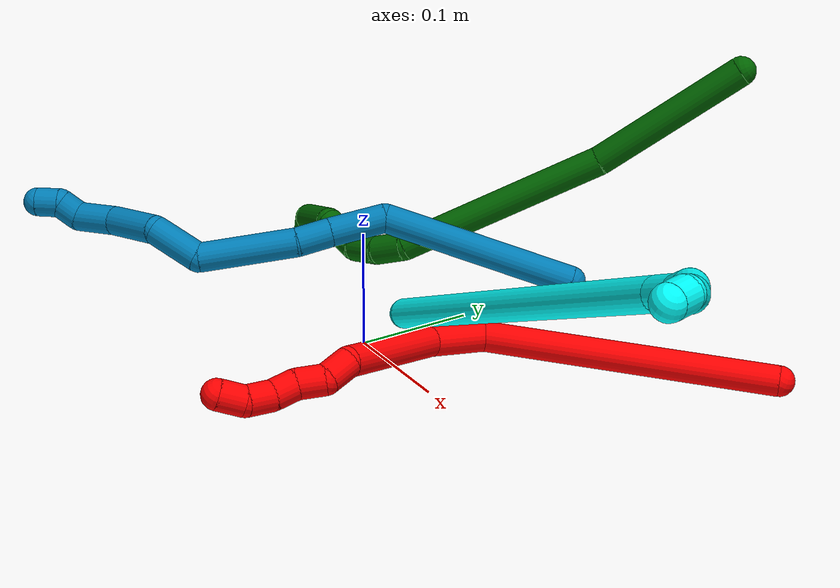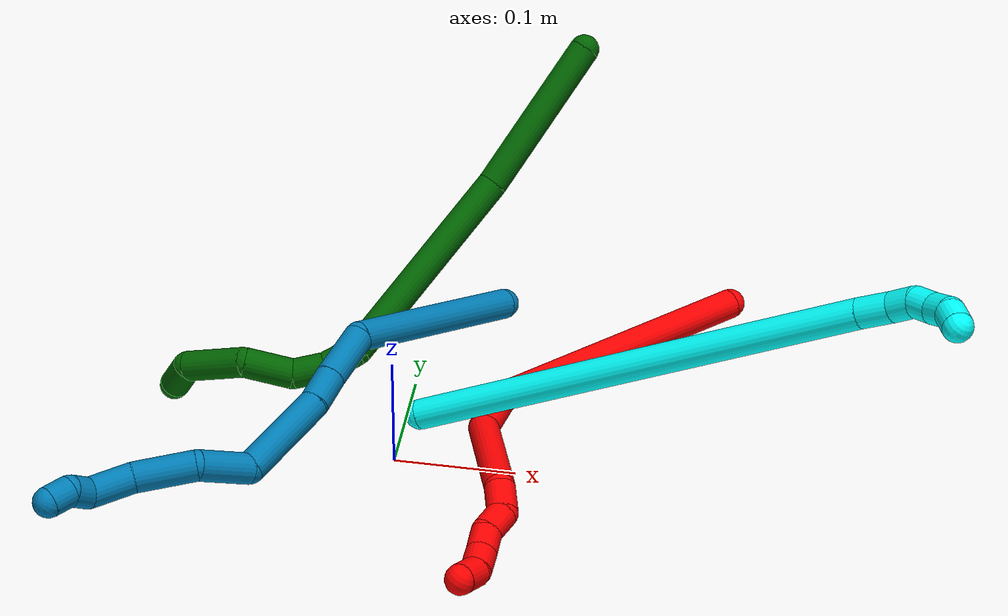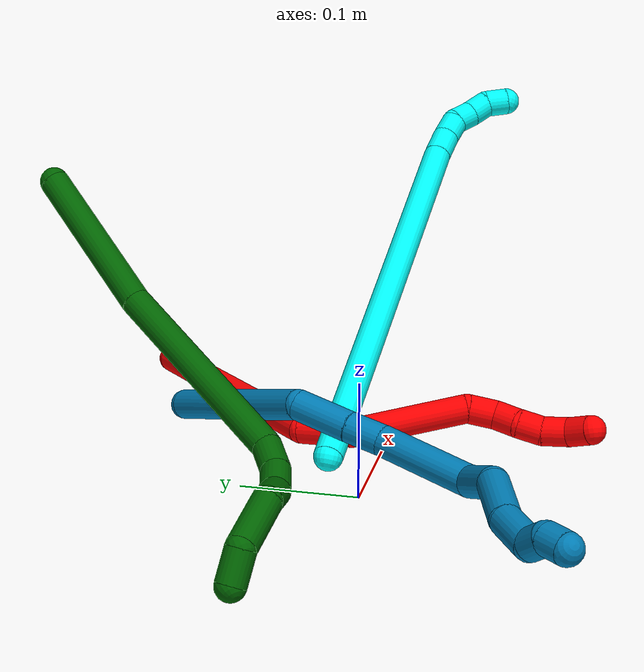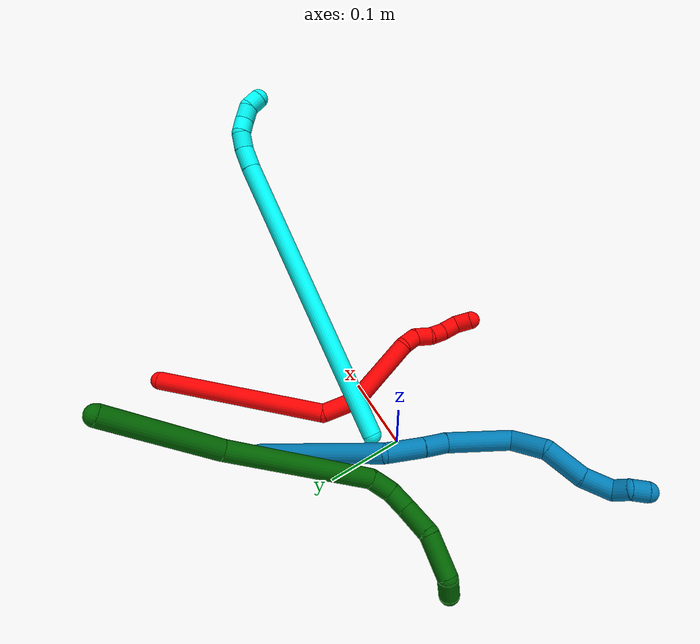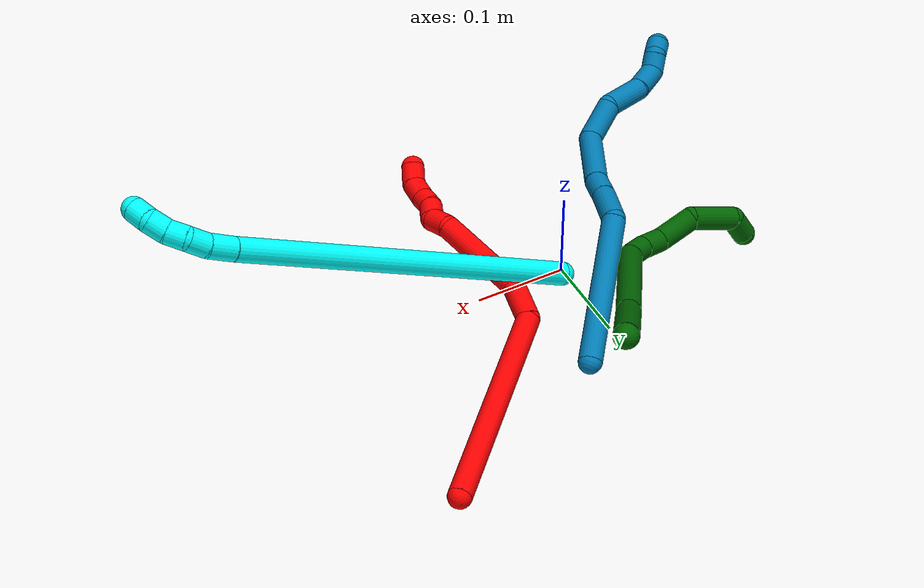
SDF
<sdf version="1.7">
 <world name="default">
  <model name="2">
   <static>0</static>
   <link name="2">
    <collision name="collision-cylinder-e_1_1_4">
     <pose>-0.089848 -0.05931 -0.052337 2.29382 -0.848929 -1.57234</pose>
     <geometry><cylinder><radius>0.0125</radius><length>0.239412</length></cylinder></geometry>
     <surface>
      <friction><ode><mu>1.16</mu><mu2>1.16</mu2><slip1>0</slip1><slip2>0</slip2></ode></friction>
      <contact><ode><kp>1e+06</kp><kd>1</kd><max_vel>0</max_vel><min_depth>0.001</min_depth></ode></contact>
     </surface>
    </collision>
    <visual name="visual-cylinder-e_1_1_4">
     <pose>-0.089848 -0.05931 -0.052337 2.29382 -0.848929 -1.57234</pose>
     <geometry><cylinder><radius>0.0125</radius><length>0.239412</length></cylinder></geometry>
     <material><ambient>1 0 0 1</ambient></material>
    </visual>
    <collision name="collision-cylinder-e_2_4_5">
     <pose>-0.188229 -0.139937 -0.110055 1.81805 -0.370204 -0.471813</pose>
     <geometry><cylinder><radius>0.0125</radius><length>0.047167</length></cylinder></geometry>
     <surface>
      <friction><ode><mu>1.16</mu><mu2>1.16</mu2><slip1>0</slip1><slip2>0</slip2></ode></friction>
      <contact><ode><kp>1e+06</kp><kd>1</kd><max_vel>0</max_vel><min_depth>0.001</min_depth></ode></contact>
     </surface>
    </collision>
    <visual name="visual-cylinder-e_2_4_5">
     <pose>-0.188229 -0.139937 -0.110055 1.81805 -0.370204 -0.471813</pose>
     <geometry><cylinder><radius>0.0125</radius><length>0.047167</length></cylinder></geometry>
     <material><ambient>1 0 0 1</ambient></material>
    </visual>
    <collision name="collision-cylinder-e_3_5_6">
     <pose>-0.197412 -0.210895 -0.111248 1.48662 -0.013047 -0.011993</pose>
     <geometry><cylinder><radius>0.0125</radius><length>0.099643</length></cylinder></geometry>
     <surface>
      <friction><ode><mu>1.16</mu><mu2>1.16</mu2><slip1>0</slip1><slip2>0</slip2></ode></friction>
      <contact><ode><kp>1e+06</kp><kd>1</kd><max_vel>0</max_vel><min_depth>0.001</min_depth></ode></contact>
     </surface>
    </collision>
    <visual name="visual-cylinder-e_3_5_6">
     <pose>-0.197412 -0.210895 -0.111248 1.48662 -0.013047 -0.011993</pose>
     <geometry><cylinder><radius>0.0125</radius><length>0.099643</length></cylinder></geometry>
     <material><ambient>1 0 0 1</ambient></material>
    </visual>
    <collision name="collision-cylinder-e_4_6_7">
     <pose>-0.195968 -0.272334 -0.111046 1.89663 0.166608 0.23165</pose>
     <geometry><cylinder><radius>0.0125</radius><length>0.025255</length></cylinder></geometry>
     <surface>
      <friction><ode><mu>1.16</mu><mu2>1.16</mu2><slip1>0</slip1><slip2>0</slip2></ode></friction>
      <contact><ode><kp>1e+06</kp><kd>1</kd><max_vel>0</max_vel><min_depth>0.001</min_depth></ode></contact>
     </surface>
    </collision>
    <visual name="visual-cylinder-e_4_6_7">
     <pose>-0.195968 -0.272334 -0.111046 1.89663 0.166608 0.23165</pose>
     <geometry><cylinder><radius>0.0125</radius><length>0.025255</length></cylinder></geometry>
     <material><ambient>1 0 0 1</ambient></material>
    </visual>
    <collision name="collision-cylinder-e_5_7_8">
     <pose>-0.199075 -0.292738 -0.120418 2.12994 -0.473398 -0.821462</pose>
     <geometry><cylinder><radius>0.0125</radius><length>0.022816</length></cylinder></geometry>
     <surface>
      <friction><ode><mu>1.16</mu><mu2>1.16</mu2><slip1>0</slip1><slip2>0</slip2></ode></friction>
      <contact><ode><kp>1e+06</kp><kd>1</kd><max_vel>0</max_vel><min_depth>0.001</min_depth></ode></contact>
     </surface>
    </collision>
    <visual name="visual-cylinder-e_5_7_8">
     <pose>-0.199075 -0.292738 -0.120418 2.12994 -0.473398 -0.821462</pose>
     <geometry><cylinder><radius>0.0125</radius><length>0.022816</length></cylinder></geometry>
     <material><ambient>1 0 0 1</ambient></material>
    </visual>
    <collision name="collision-cylinder-e_6_8_9">
     <pose>-0.205334 -0.310709 -0.130351 2.02289 -0.101318 -0.161623</pose>
     <geometry><cylinder><radius>0.0125</radius><length>0.020927</length></cylinder></geometry>
     <surface>
      <friction><ode><mu>1.16</mu><mu2>1.16</mu2><slip1>0</slip1><slip2>0</slip2></ode></friction>
      <contact><ode><kp>1e+06</kp><kd>1</kd><max_vel>0</max_vel><min_depth>0.001</min_depth></ode></contact>
     </surface>
    </collision>
    <visual name="visual-cylinder-e_6_8_9">
     <pose>-0.205334 -0.310709 -0.130351 2.02289 -0.101318 -0.161623</pose>
     <geometry><cylinder><radius>0.0125</radius><length>0.020927</length></cylinder></geometry>
     <material><ambient>1 0 0 1</ambient></material>
    </visual>
    <collision name="collision-cylinder-e_7_9_10">
     <pose>-0.208925 -0.330982 -0.137009 1.76187 -0.224134 -0.271115</pose>
     <geometry><cylinder><radius>0.0125</radius><length>0.022793</length></cylinder></geometry>
     <surface>
      <friction><ode><mu>1.16</mu><mu2>1.16</mu2><slip1>0</slip1><slip2>0</slip2></ode></friction>
      <contact><ode><kp>1e+06</kp><kd>1</kd><max_vel>0</max_vel><min_depth>0.001</min_depth></ode></contact>
     </surface>
    </collision>
    <visual name="visual-cylinder-e_7_9_10">
     <pose>-0.208925 -0.330982 -0.137009 1.76187 -0.224134 -0.271115</pose>
     <geometry><cylinder><radius>0.0125</radius><length>0.022793</length></cylinder></geometry>
     <material><ambient>1 0 0 1</ambient></material>
    </visual>
    <collision name="collision-cylinder-e_8_10_2">
     <pose>-0.218537 -0.350243 -0.140112 1.68918 -0.699631 -0.779531</pose>
     <geometry><cylinder><radius>0.0125</radius><length>0.021987</length></cylinder></geometry>
     <surface>
      <friction><ode><mu>1.16</mu><mu2>1.16</mu2><slip1>0</slip1><slip2>0</slip2></ode></friction>
      <contact><ode><kp>1e+06</kp><kd>1</kd><max_vel>0</max_vel><min_depth>0.001</min_depth></ode></contact>
     </surface>
    </collision>
    <visual name="visual-cylinder-e_8_10_2">
     <pose>-0.218537 -0.350243 -0.140112 1.68918 -0.699631 -0.779531</pose>
     <geometry><cylinder><radius>0.0125</radius><length>0.021987</length></cylinder></geometry>
     <material><ambient>1 0 0 1</ambient></material>
    </visual>
    <collision name="collision-sphere-2">
     <pose>-0.225616 -0.358595 -0.141105 0 -0 0</pose>
     <geometry><sphere><radius>0.0125</radius></sphere></geometry>
     <surface>
      <friction><ode><mu>1.16</mu><mu2>1.16</mu2><slip1>0</slip1><slip2>0</slip2></ode></friction>
      <contact><ode><kp>1e+06</kp><kd>1</kd><max_vel>0</max_vel><min_depth>0.001</min_depth></ode></contact>
     </surface>
    </collision>
    <visual name="visual-sphere-2">
     <pose>-0.225616 -0.358595 -0.141105 0 -0 0</pose>
     <geometry><sphere><radius>0.0125</radius></sphere></geometry>
     <material><ambient>1 0 0 1</ambient></material>
    </visual>
    <collision name="collision-sphere-10">
     <pose>-0.211458 -0.341891 -0.139119 0 -0 0</pose>
     <geometry><sphere><radius>0.0125</radius></sphere></geometry>
     <surface>
      <friction><ode><mu>1.16</mu><mu2>1.16</mu2><slip1>0</slip1><slip2>0</slip2></ode></friction>
      <contact><ode><kp>1e+06</kp><kd>1</kd><max_vel>0</max_vel><min_depth>0.001</min_depth></ode></contact>
     </surface>
    </collision>
    <visual name="visual-sphere-10">
     <pose>-0.211458 -0.341891 -0.139119 0 -0 0</pose>
     <geometry><sphere><radius>0.0125</radius></sphere></geometry>
     <material><ambient>1 0 0 1</ambient></material>
    </visual>
    <collision name="collision-sphere-9">
     <pose>-0.206392 -0.320073 -0.134898 0 -0 0</pose>
     <geometry><sphere><radius>0.0125</radius></sphere></geometry>
     <surface>
      <friction><ode><mu>1.16</mu><mu2>1.16</mu2><slip1>0</slip1><slip2>0</slip2></ode></friction>
      <contact><ode><kp>1e+06</kp><kd>1</kd><max_vel>0</max_vel><min_depth>0.001</min_depth></ode></contact>
     </surface>
    </collision>
    <visual name="visual-sphere-9">
     <pose>-0.206392 -0.320073 -0.134898 0 -0 0</pose>
     <geometry><sphere><radius>0.0125</radius></sphere></geometry>
     <material><ambient>1 0 0 1</ambient></material>
    </visual>
    <collision name="collision-sphere-4">
     <pose>-0.179697 -0.11862 -0.104675 0 -0 0</pose>
     <geometry><sphere><radius>0.0125</radius></sphere></geometry>
     <surface>
      <friction><ode><mu>1.16</mu><mu2>1.16</mu2><slip1>0</slip1><slip2>0</slip2></ode></friction>
      <contact><ode><kp>1e+06</kp><kd>1</kd><max_vel>0</max_vel><min_depth>0.001</min_depth></ode></contact>
     </surface>
    </collision>
    <visual name="visual-sphere-4">
     <pose>-0.179697 -0.11862 -0.104675 0 -0 0</pose>
     <geometry><sphere><radius>0.0125</radius></sphere></geometry>
     <material><ambient>1 0 0 1</ambient></material>
    </visual>
    <collision name="collision-sphere-1">
     <geometry><sphere><radius>0.0125</radius></sphere></geometry>
     <surface>
      <friction><ode><mu>1.16</mu><mu2>1.16</mu2><slip1>0</slip1><slip2>0</slip2></ode></friction>
      <contact><ode><kp>1e+06</kp><kd>1</kd><max_vel>0</max_vel><min_depth>0.001</min_depth></ode></contact>
     </surface>
    </collision>
    <visual name="visual-sphere-1">
     <geometry><sphere><radius>0.0125</radius></sphere></geometry>
     <material><ambient>1 0 0 1</ambient></material>
    </visual>
    <collision name="collision-sphere-8">
     <pose>-0.204276 -0.301345 -0.125803 0 -0 0</pose>
     <geometry><sphere><radius>0.0125</radius></sphere></geometry>
     <surface>
      <friction><ode><mu>1.16</mu><mu2>1.16</mu2><slip1>0</slip1><slip2>0</slip2></ode></friction>
      <contact><ode><kp>1e+06</kp><kd>1</kd><max_vel>0</max_vel><min_depth>0.001</min_depth></ode></contact>
     </surface>
    </collision>
    <visual name="visual-sphere-8">
     <pose>-0.204276 -0.301345 -0.125803 0 -0 0</pose>
     <geometry><sphere><radius>0.0125</radius></sphere></geometry>
     <material><ambient>1 0 0 1</ambient></material>
    </visual>
    <collision name="collision-sphere-5">
     <pose>-0.196762 -0.161255 -0.115436 0 -0 0</pose>
     <geometry><sphere><radius>0.0125</radius></sphere></geometry>
     <surface>
      <friction><ode><mu>1.16</mu><mu2>1.16</mu2><slip1>0</slip1><slip2>0</slip2></ode></friction>
      <contact><ode><kp>1e+06</kp><kd>1</kd><max_vel>0</max_vel><min_depth>0.001</min_depth></ode></contact>
     </surface>
    </collision>
    <visual name="visual-sphere-5">
     <pose>-0.196762 -0.161255 -0.115436 0 -0 0</pose>
     <geometry><sphere><radius>0.0125</radius></sphere></geometry>
     <material><ambient>1 0 0 1</ambient></material>
    </visual>
    <collision name="collision-sphere-6">
     <pose>-0.198062 -0.260536 -0.10706 0 -0 0</pose>
     <geometry><sphere><radius>0.0125</radius></sphere></geometry>
     <surface>
      <friction><ode><mu>1.16</mu><mu2>1.16</mu2><slip1>0</slip1><slip2>0</slip2></ode></friction>
      <contact><ode><kp>1e+06</kp><kd>1</kd><max_vel>0</max_vel><min_depth>0.001</min_depth></ode></contact>
     </surface>
    </collision>
    <visual name="visual-sphere-6">
     <pose>-0.198062 -0.260536 -0.10706 0 -0 0</pose>
     <geometry><sphere><radius>0.0125</radius></sphere></geometry>
     <material><ambient>1 0 0 1</ambient></material>
    </visual>
    <collision name="collision-sphere-7">
     <pose>-0.193874 -0.284131 -0.115032 0 -0 0</pose>
     <geometry><sphere><radius>0.0125</radius></sphere></geometry>
     <surface>
      <friction><ode><mu>1.16</mu><mu2>1.16</mu2><slip1>0</slip1><slip2>0</slip2></ode></friction>
      <contact><ode><kp>1e+06</kp><kd>1</kd><max_vel>0</max_vel><min_depth>0.001</min_depth></ode></contact>
     </surface>
    </collision>
    <visual name="visual-sphere-7">
     <pose>-0.193874 -0.284131 -0.115032 0 -0 0</pose>
     <geometry><sphere><radius>0.0125</radius></sphere></geometry>
     <material><ambient>1 0 0 1</ambient></material>
    </visual>
    <inertial>
     <pose>-0.14683 -0.154236 -0.086579 0 -0 0</pose>
     <mass>0.5</mass>
     <inertia>
      <ixx>-0.000686</ixx>
      <ixy>0</ixy>
      <ixz>0</ixz>
      <iyy>-0.000142</iyy>
      <iyz>0</iyz>
      <izz>0.001536</izz>
     </inertia>
    </inertial>
   </link>
   <pose>0.249044 0.234905 0.012075 -0.139095 0.506045 0.194345</pose>
  </model>
  <model name="3">
   <static>0</static>
   <link name="3">
    <collision name="collision-cylinder-e_1_1_4">
     <pose>0.10415 0.00074 0.165022 -0.004487 0.562987 -0.001298</pose>
     <geometry><cylinder><radius>0.0125</radius><length>0.390282</length></cylinder></geometry>
     <surface>
      <friction><ode><mu>1.16</mu><mu2>1.16</mu2><slip1>0</slip1><slip2>0</slip2></ode></friction>
      <contact><ode><kp>1e+06</kp><kd>1</kd><max_vel>0</max_vel><min_depth>0.001</min_depth></ode></contact>
     </surface>
    </collision>
    <visual name="visual-cylinder-e_1_1_4">
     <pose>0.10415 0.00074 0.165022 -0.004487 0.562987 -0.001298</pose>
     <geometry><cylinder><radius>0.0125</radius><length>0.390282</length></cylinder></geometry>
     <material><ambient>0.003922 1 0.996078 1</ambient></material>
    </visual>
    <collision name="collision-cylinder-e_2_4_5">
     <pose>0.215695 0.000567 0.341902 0.07694 0.556303 0.02198</pose>
     <geometry><cylinder><radius>0.0125</radius><length>0.02801</length></cylinder></geometry>
     <surface>
      <friction><ode><mu>1.16</mu><mu2>1.16</mu2><slip1>0</slip1><slip2>0</slip2></ode></friction>
      <contact><ode><kp>1e+06</kp><kd>1</kd><max_vel>0</max_vel><min_depth>0.001</min_depth></ode></contact>
     </surface>
    </collision>
    <visual name="visual-cylinder-e_2_4_5">
     <pose>0.215695 0.000567 0.341902 0.07694 0.556303 0.02198</pose>
     <geometry><cylinder><radius>0.0125</radius><length>0.02801</length></cylinder></geometry>
     <material><ambient>0.003922 1 0.996078 1</ambient></material>
    </visual>
    <collision name="collision-cylinder-e_3_5_6">
     <pose>0.227274 -0.002559 0.363439 0.224656 0.398876 0.045593</pose>
     <geometry><cylinder><radius>0.0125</radius><length>0.021547</length></cylinder></geometry>
     <surface>
      <friction><ode><mu>1.16</mu><mu2>1.16</mu2><slip1>0</slip1><slip2>0</slip2></ode></friction>
      <contact><ode><kp>1e+06</kp><kd>1</kd><max_vel>0</max_vel><min_depth>0.001</min_depth></ode></contact>
     </surface>
    </collision>
    <visual name="visual-cylinder-e_3_5_6">
     <pose>0.227274 -0.002559 0.363439 0.224656 0.398876 0.045593</pose>
     <geometry><cylinder><radius>0.0125</radius><length>0.021547</length></cylinder></geometry>
     <material><ambient>0.003922 1 0.996078 1</ambient></material>
    </visual>
    <collision name="collision-cylinder-e_4_6_7">
     <pose>0.236619 -0.010546 0.379486 0.736621 0.54062 0.213061</pose>
     <geometry><cylinder><radius>0.0125</radius><length>0.020055</length></cylinder></geometry>
     <surface>
      <friction><ode><mu>1.16</mu><mu2>1.16</mu2><slip1>0</slip1><slip2>0</slip2></ode></friction>
      <contact><ode><kp>1e+06</kp><kd>1</kd><max_vel>0</max_vel><min_depth>0.001</min_depth></ode></contact>
     </surface>
    </collision>
    <visual name="visual-cylinder-e_4_6_7">
     <pose>0.236619 -0.010546 0.379486 0.736621 0.54062 0.213061</pose>
     <geometry><cylinder><radius>0.0125</radius><length>0.020055</length></cylinder></geometry>
     <material><ambient>0.003922 1 0.996078 1</ambient></material>
    </visual>
    <collision name="collision-cylinder-e_5_7_8">
     <pose>0.244802 -0.022676 0.392963 0.729437 0.306877 0.117957</pose>
     <geometry><cylinder><radius>0.0125</radius><length>0.020003</length></cylinder></geometry>
     <surface>
      <friction><ode><mu>1.16</mu><mu2>1.16</mu2><slip1>0</slip1><slip2>0</slip2></ode></friction>
      <contact><ode><kp>1e+06</kp><kd>1</kd><max_vel>0</max_vel><min_depth>0.001</min_depth></ode></contact>
     </surface>
    </collision>
    <visual name="visual-cylinder-e_5_7_8">
     <pose>0.244802 -0.022676 0.392963 0.729437 0.306877 0.117957</pose>
     <geometry><cylinder><radius>0.0125</radius><length>0.020003</length></cylinder></geometry>
     <material><ambient>0.003922 1 0.996078 1</ambient></material>
    </visual>
    <collision name="collision-cylinder-e_6_8_2">
     <pose>0.250577 -0.038133 0.403324 1.22753 0.277582 0.196201</pose>
     <geometry><cylinder><radius>0.0125</radius><length>0.020103</length></cylinder></geometry>
     <surface>
      <friction><ode><mu>1.16</mu><mu2>1.16</mu2><slip1>0</slip1><slip2>0</slip2></ode></friction>
      <contact><ode><kp>1e+06</kp><kd>1</kd><max_vel>0</max_vel><min_depth>0.001</min_depth></ode></contact>
     </surface>
    </collision>
    <visual name="visual-cylinder-e_6_8_2">
     <pose>0.250577 -0.038133 0.403324 1.22753 0.277582 0.196201</pose>
     <geometry><cylinder><radius>0.0125</radius><length>0.020103</length></cylinder></geometry>
     <material><ambient>0.003922 1 0.996078 1</ambient></material>
    </visual>
    <collision name="collision-sphere-2">
     <pose>0.253332 -0.047235 0.406578 0 -0 0</pose>
     <geometry><sphere><radius>0.0125</radius></sphere></geometry>
     <surface>
      <friction><ode><mu>1.16</mu><mu2>1.16</mu2><slip1>0</slip1><slip2>0</slip2></ode></friction>
      <contact><ode><kp>1e+06</kp><kd>1</kd><max_vel>0</max_vel><min_depth>0.001</min_depth></ode></contact>
     </surface>
    </collision>
    <visual name="visual-sphere-2">
     <pose>0.253332 -0.047235 0.406578 0 -0 0</pose>
     <geometry><sphere><radius>0.0125</radius></sphere></geometry>
     <material><ambient>0.003922 1 0.996078 1</ambient></material>
    </visual>
    <collision name="collision-sphere-4">
     <pose>0.208299 0.001481 0.330044 0 -0 0</pose>
     <geometry><sphere><radius>0.0125</radius></sphere></geometry>
     <surface>
      <friction><ode><mu>1.16</mu><mu2>1.16</mu2><slip1>0</slip1><slip2>0</slip2></ode></friction>
      <contact><ode><kp>1e+06</kp><kd>1</kd><max_vel>0</max_vel><min_depth>0.001</min_depth></ode></contact>
     </surface>
    </collision>
    <visual name="visual-sphere-4">
     <pose>0.208299 0.001481 0.330044 0 -0 0</pose>
     <geometry><sphere><radius>0.0125</radius></sphere></geometry>
     <material><ambient>0.003922 1 0.996078 1</ambient></material>
    </visual>
    <collision name="collision-sphere-1">
     <geometry><sphere><radius>0.0125</radius></sphere></geometry>
     <surface>
      <friction><ode><mu>1.16</mu><mu2>1.16</mu2><slip1>0</slip1><slip2>0</slip2></ode></friction>
      <contact><ode><kp>1e+06</kp><kd>1</kd><max_vel>0</max_vel><min_depth>0.001</min_depth></ode></contact>
     </surface>
    </collision>
    <visual name="visual-sphere-1">
     <geometry><sphere><radius>0.0125</radius></sphere></geometry>
     <material><ambient>0.003922 1 0.996078 1</ambient></material>
    </visual>
    <collision name="collision-sphere-8">
     <pose>0.247823 -0.02903 0.400071 0 -0 0</pose>
     <geometry><sphere><radius>0.0125</radius></sphere></geometry>
     <surface>
      <friction><ode><mu>1.16</mu><mu2>1.16</mu2><slip1>0</slip1><slip2>0</slip2></ode></friction>
      <contact><ode><kp>1e+06</kp><kd>1</kd><max_vel>0</max_vel><min_depth>0.001</min_depth></ode></contact>
     </surface>
    </collision>
    <visual name="visual-sphere-8">
     <pose>0.247823 -0.02903 0.400071 0 -0 0</pose>
     <geometry><sphere><radius>0.0125</radius></sphere></geometry>
     <material><ambient>0.003922 1 0.996078 1</ambient></material>
    </visual>
    <collision name="collision-sphere-5">
     <pose>0.22309 -0.000347 0.353761 0 -0 0</pose>
     <geometry><sphere><radius>0.0125</radius></sphere></geometry>
     <surface>
      <friction><ode><mu>1.16</mu><mu2>1.16</mu2><slip1>0</slip1><slip2>0</slip2></ode></friction>
      <contact><ode><kp>1e+06</kp><kd>1</kd><max_vel>0</max_vel><min_depth>0.001</min_depth></ode></contact>
     </surface>
    </collision>
    <visual name="visual-sphere-5">
     <pose>0.22309 -0.000347 0.353761 0 -0 0</pose>
     <geometry><sphere><radius>0.0125</radius></sphere></geometry>
     <material><ambient>0.003922 1 0.996078 1</ambient></material>
    </visual>
    <collision name="collision-sphere-6">
     <pose>0.231459 -0.004771 0.373117 0 -0 0</pose>
     <geometry><sphere><radius>0.0125</radius></sphere></geometry>
     <surface>
      <friction><ode><mu>1.16</mu><mu2>1.16</mu2><slip1>0</slip1><slip2>0</slip2></ode></friction>
      <contact><ode><kp>1e+06</kp><kd>1</kd><max_vel>0</max_vel><min_depth>0.001</min_depth></ode></contact>
     </surface>
    </collision>
    <visual name="visual-sphere-6">
     <pose>0.231459 -0.004771 0.373117 0 -0 0</pose>
     <geometry><sphere><radius>0.0125</radius></sphere></geometry>
     <material><ambient>0.003922 1 0.996078 1</ambient></material>
    </visual>
    <collision name="collision-sphere-7">
     <pose>0.24178 -0.016322 0.385854 0 -0 0</pose>
     <geometry><sphere><radius>0.0125</radius></sphere></geometry>
     <surface>
      <friction><ode><mu>1.16</mu><mu2>1.16</mu2><slip1>0</slip1><slip2>0</slip2></ode></friction>
      <contact><ode><kp>1e+06</kp><kd>1</kd><max_vel>0</max_vel><min_depth>0.001</min_depth></ode></contact>
     </surface>
    </collision>
    <visual name="visual-sphere-7">
     <pose>0.24178 -0.016322 0.385854 0 -0 0</pose>
     <geometry><sphere><radius>0.0125</radius></sphere></geometry>
     <material><ambient>0.003922 1 0.996078 1</ambient></material>
    </visual>
    <inertial>
     <pose>0.132532 -0.002364 0.210784 0 -0 0</pose>
     <mass>0.5</mass>
     <inertia>
      <ixx>0.004225</ixx>
      <ixy>0</ixy>
      <ixz>0</ixz>
      <iyy>0.004968</iyy>
      <iyz>0</iyz>
      <izz>-0.002639</izz>
     </inertia>
    </inertial>
   </link>
   <pose>0.016661 0.029246 0.027171 0.040409 0.557757 -0.045086</pose>
  </model>
  <model name="6">
   <static>0</static>
   <link name="6">
    <collision name="collision-cylinder-e_1_1_4">
     <pose>0.01557 -0.003137 -0.067235 3.09497 0.227322 2.73868</pose>
     <geometry><cylinder><radius>0.0125</radius><length>0.138171</length></cylinder></geometry>
     <surface>
      <friction><ode><mu>1.16</mu><mu2>1.16</mu2><slip1>0</slip1><slip2>0</slip2></ode></friction>
      <contact><ode><kp>1e+06</kp><kd>1</kd><max_vel>0</max_vel><min_depth>0.001</min_depth></ode></contact>
     </surface>
    </collision>
    <visual name="visual-cylinder-e_1_1_4">
     <pose>0.01557 -0.003137 -0.067235 3.09497 0.227322 2.73868</pose>
     <geometry><cylinder><radius>0.0125</radius><length>0.138171</length></cylinder></geometry>
     <material><ambient>0 0.392157 0.003922 1</ambient></material>
    </visual>
    <collision name="collision-cylinder-e_2_4_5">
     <pose>0.045886 -0.024348 -0.222708 2.93955 0.162288 1.35225</pose>
     <geometry><cylinder><radius>0.0125</radius><length>0.182539</length></cylinder></geometry>
     <surface>
      <friction><ode><mu>1.16</mu><mu2>1.16</mu2><slip1>0</slip1><slip2>0</slip2></ode></friction>
      <contact><ode><kp>1e+06</kp><kd>1</kd><max_vel>0</max_vel><min_depth>0.001</min_depth></ode></contact>
     </surface>
    </collision>
    <visual name="visual-cylinder-e_2_4_5">
     <pose>0.045886 -0.024348 -0.222708 2.93955 0.162288 1.35225</pose>
     <geometry><cylinder><radius>0.0125</radius><length>0.182539</length></cylinder></geometry>
     <material><ambient>0 0.392157 0.003922 1</ambient></material>
    </visual>
    <collision name="collision-cylinder-e_3_5_6">
     <pose>0.056965 -0.043117 -0.324923 3.09192 -0.256369 -2.76077</pose>
     <geometry><cylinder><radius>0.0125</radius><length>0.028936</length></cylinder></geometry>
     <surface>
      <friction><ode><mu>1.16</mu><mu2>1.16</mu2><slip1>0</slip1><slip2>0</slip2></ode></friction>
      <contact><ode><kp>1e+06</kp><kd>1</kd><max_vel>0</max_vel><min_depth>0.001</min_depth></ode></contact>
     </surface>
    </collision>
    <visual name="visual-cylinder-e_3_5_6">
     <pose>0.056965 -0.043117 -0.324923 3.09192 -0.256369 -2.76077</pose>
     <geometry><cylinder><radius>0.0125</radius><length>0.028936</length></cylinder></geometry>
     <material><ambient>0 0.392157 0.003922 1</ambient></material>
    </visual>
    <collision name="collision-cylinder-e_4_6_7">
     <pose>0.046007 -0.04323 -0.350717 -3.0924 -0.552196 2.96838</pose>
     <geometry><cylinder><radius>0.0125</radius><length>0.027792</length></cylinder></geometry>
     <surface>
      <friction><ode><mu>1.16</mu><mu2>1.16</mu2><slip1>0</slip1><slip2>0</slip2></ode></friction>
      <contact><ode><kp>1e+06</kp><kd>1</kd><max_vel>0</max_vel><min_depth>0.001</min_depth></ode></contact>
     </surface>
    </collision>
    <visual name="visual-cylinder-e_4_6_7">
     <pose>0.046007 -0.04323 -0.350717 -3.0924 -0.552196 2.96838</pose>
     <geometry><cylinder><radius>0.0125</radius><length>0.027792</length></cylinder></geometry>
     <material><ambient>0 0.392157 0.003922 1</ambient></material>
    </visual>
    <collision name="collision-cylinder-e_5_7_8">
     <pose>0.021725 -0.046302 -0.374005 2.83324 -0.954381 -2.55763</pose>
     <geometry><cylinder><radius>0.0125</radius><length>0.041651</length></cylinder></geometry>
     <surface>
      <friction><ode><mu>1.16</mu><mu2>1.16</mu2><slip1>0</slip1><slip2>0</slip2></ode></friction>
      <contact><ode><kp>1e+06</kp><kd>1</kd><max_vel>0</max_vel><min_depth>0.001</min_depth></ode></contact>
     </surface>
    </collision>
    <visual name="visual-cylinder-e_5_7_8">
     <pose>0.021725 -0.046302 -0.374005 2.83324 -0.954381 -2.55763</pose>
     <geometry><cylinder><radius>0.0125</radius><length>0.041651</length></cylinder></geometry>
     <material><ambient>0 0.392157 0.003922 1</ambient></material>
    </visual>
    <collision name="collision-cylinder-e_6_8_9">
     <pose>-0.011495 -0.040406 -0.403915 -2.66369 -0.663343 1.91032</pose>
     <geometry><cylinder><radius>0.0125</radius><length>0.052706</length></cylinder></geometry>
     <surface>
      <friction><ode><mu>1.16</mu><mu2>1.16</mu2><slip1>0</slip1><slip2>0</slip2></ode></friction>
      <contact><ode><kp>1e+06</kp><kd>1</kd><max_vel>0</max_vel><min_depth>0.001</min_depth></ode></contact>
     </surface>
    </collision>
    <visual name="visual-cylinder-e_6_8_9">
     <pose>-0.011495 -0.040406 -0.403915 -2.66369 -0.663343 1.91032</pose>
     <geometry><cylinder><radius>0.0125</radius><length>0.052706</length></cylinder></geometry>
     <material><ambient>0 0.392157 0.003922 1</ambient></material>
    </visual>
    <collision name="collision-cylinder-e_7_9_2">
     <pose>-0.027504 -0.020333 -0.43174 -2.2992 0.015412 -0.034398</pose>
     <geometry><cylinder><radius>0.0125</radius><length>0.028206</length></cylinder></geometry>
     <surface>
      <friction><ode><mu>1.16</mu><mu2>1.16</mu2><slip1>0</slip1><slip2>0</slip2></ode></friction>
      <contact><ode><kp>1e+06</kp><kd>1</kd><max_vel>0</max_vel><min_depth>0.001</min_depth></ode></contact>
     </surface>
    </collision>
    <visual name="visual-cylinder-e_7_9_2">
     <pose>-0.027504 -0.020333 -0.43174 -2.2992 0.015412 -0.034398</pose>
     <geometry><cylinder><radius>0.0125</radius><length>0.028206</length></cylinder></geometry>
     <material><ambient>0 0.392157 0.003922 1</ambient></material>
    </visual>
    <collision name="collision-sphere-2">
     <pose>-0.027287 -0.00981 -0.441127 0 -0 0</pose>
     <geometry><sphere><radius>0.0125</radius></sphere></geometry>
     <surface>
      <friction><ode><mu>1.16</mu><mu2>1.16</mu2><slip1>0</slip1><slip2>0</slip2></ode></friction>
      <contact><ode><kp>1e+06</kp><kd>1</kd><max_vel>0</max_vel><min_depth>0.001</min_depth></ode></contact>
     </surface>
    </collision>
    <visual name="visual-sphere-2">
     <pose>-0.027287 -0.00981 -0.441127 0 -0 0</pose>
     <geometry><sphere><radius>0.0125</radius></sphere></geometry>
     <material><ambient>0 0.392157 0.003922 1</ambient></material>
    </visual>
    <collision name="collision-sphere-9">
     <pose>-0.027722 -0.030856 -0.422353 0 -0 0</pose>
     <geometry><sphere><radius>0.0125</radius></sphere></geometry>
     <surface>
      <friction><ode><mu>1.16</mu><mu2>1.16</mu2><slip1>0</slip1><slip2>0</slip2></ode></friction>
      <contact><ode><kp>1e+06</kp><kd>1</kd><max_vel>0</max_vel><min_depth>0.001</min_depth></ode></contact>
     </surface>
    </collision>
    <visual name="visual-sphere-9">
     <pose>-0.027722 -0.030856 -0.422353 0 -0 0</pose>
     <geometry><sphere><radius>0.0125</radius></sphere></geometry>
     <material><ambient>0 0.392157 0.003922 1</ambient></material>
    </visual>
    <collision name="collision-sphere-4">
     <pose>0.031139 -0.006273 -0.13447 0 -0 0</pose>
     <geometry><sphere><radius>0.0125</radius></sphere></geometry>
     <surface>
      <friction><ode><mu>1.16</mu><mu2>1.16</mu2><slip1>0</slip1><slip2>0</slip2></ode></friction>
      <contact><ode><kp>1e+06</kp><kd>1</kd><max_vel>0</max_vel><min_depth>0.001</min_depth></ode></contact>
     </surface>
    </collision>
    <visual name="visual-sphere-4">
     <pose>0.031139 -0.006273 -0.13447 0 -0 0</pose>
     <geometry><sphere><radius>0.0125</radius></sphere></geometry>
     <material><ambient>0 0.392157 0.003922 1</ambient></material>
    </visual>
    <collision name="collision-sphere-1">
     <geometry><sphere><radius>0.0125</radius></sphere></geometry>
     <surface>
      <friction><ode><mu>1.16</mu><mu2>1.16</mu2><slip1>0</slip1><slip2>0</slip2></ode></friction>
      <contact><ode><kp>1e+06</kp><kd>1</kd><max_vel>0</max_vel><min_depth>0.001</min_depth></ode></contact>
     </surface>
    </collision>
    <visual name="visual-sphere-1">
     <geometry><sphere><radius>0.0125</radius></sphere></geometry>
     <material><ambient>0 0.392157 0.003922 1</ambient></material>
    </visual>
    <collision name="collision-sphere-8">
     <pose>0.004732 -0.049956 -0.385477 0 -0 0</pose>
     <geometry><sphere><radius>0.0125</radius></sphere></geometry>
     <surface>
      <friction><ode><mu>1.16</mu><mu2>1.16</mu2><slip1>0</slip1><slip2>0</slip2></ode></friction>
      <contact><ode><kp>1e+06</kp><kd>1</kd><max_vel>0</max_vel><min_depth>0.001</min_depth></ode></contact>
     </surface>
    </collision>
    <visual name="visual-sphere-8">
     <pose>0.004732 -0.049956 -0.385477 0 -0 0</pose>
     <geometry><sphere><radius>0.0125</radius></sphere></geometry>
     <material><ambient>0 0.392157 0.003922 1</ambient></material>
    </visual>
    <collision name="collision-sphere-5">
     <pose>0.060633 -0.042422 -0.310945 0 -0 0</pose>
     <geometry><sphere><radius>0.0125</radius></sphere></geometry>
     <surface>
      <friction><ode><mu>1.16</mu><mu2>1.16</mu2><slip1>0</slip1><slip2>0</slip2></ode></friction>
      <contact><ode><kp>1e+06</kp><kd>1</kd><max_vel>0</max_vel><min_depth>0.001</min_depth></ode></contact>
     </surface>
    </collision>
    <visual name="visual-sphere-5">
     <pose>0.060633 -0.042422 -0.310945 0 -0 0</pose>
     <geometry><sphere><radius>0.0125</radius></sphere></geometry>
     <material><ambient>0 0.392157 0.003922 1</ambient></material>
    </visual>
    <collision name="collision-sphere-6">
     <pose>0.053296 -0.043812 -0.338901 0 -0 0</pose>
     <geometry><sphere><radius>0.0125</radius></sphere></geometry>
     <surface>
      <friction><ode><mu>1.16</mu><mu2>1.16</mu2><slip1>0</slip1><slip2>0</slip2></ode></friction>
      <contact><ode><kp>1e+06</kp><kd>1</kd><max_vel>0</max_vel><min_depth>0.001</min_depth></ode></contact>
     </surface>
    </collision>
    <visual name="visual-sphere-6">
     <pose>0.053296 -0.043812 -0.338901 0 -0 0</pose>
     <geometry><sphere><radius>0.0125</radius></sphere></geometry>
     <material><ambient>0 0.392157 0.003922 1</ambient></material>
    </visual>
    <collision name="collision-sphere-7">
     <pose>0.038718 -0.042648 -0.362534 0 -0 0</pose>
     <geometry><sphere><radius>0.0125</radius></sphere></geometry>
     <surface>
      <friction><ode><mu>1.16</mu><mu2>1.16</mu2><slip1>0</slip1><slip2>0</slip2></ode></friction>
      <contact><ode><kp>1e+06</kp><kd>1</kd><max_vel>0</max_vel><min_depth>0.001</min_depth></ode></contact>
     </surface>
    </collision>
    <visual name="visual-sphere-7">
     <pose>0.038718 -0.042648 -0.362534 0 -0 0</pose>
     <geometry><sphere><radius>0.0125</radius></sphere></geometry>
     <material><ambient>0 0.392157 0.003922 1</ambient></material>
    </visual>
    <inertial>
     <pose>0.025955 -0.023917 -0.236272 0 -0 0</pose>
     <mass>0.5</mass>
     <inertia>
      <ixx>0.000485</ixx>
      <ixy>0</ixy>
      <ixz>0</ixz>
      <iyy>0.000722</iyy>
      <iyz>0</iyz>
      <izz>-4.5e-05</izz>
     </inertia>
    </inertial>
   </link>
   <pose>0.11165 0.294495 0.219631 -0.927541 0.527301 -0.50465</pose>
  </model>
  <model name="9">
   <static>0</static>
   <link name="9">
    <collision name="collision-cylinder-e_1_1_4">
     <pose>-0.022099 -0.025761 0.075743 0.327839 -0.269501 -0.044841</pose>
     <geometry><cylinder><radius>0.0125</radius><length>0.165999</length></cylinder></geometry>
     <surface>
      <friction><ode><mu>1.16</mu><mu2>1.16</mu2><slip1>0</slip1><slip2>0</slip2></ode></friction>
      <contact><ode><kp>1e+06</kp><kd>1</kd><max_vel>0</max_vel><min_depth>0.001</min_depth></ode></contact>
     </surface>
    </collision>
    <visual name="visual-cylinder-e_1_1_4">
     <pose>-0.022099 -0.025761 0.075743 0.327839 -0.269501 -0.044841</pose>
     <geometry><cylinder><radius>0.0125</radius><length>0.165999</length></cylinder></geometry>
     <material><ambient>0 0.490196 0.709804 1</ambient></material>
    </visual>
    <collision name="collision-cylinder-e_2_4_5">
     <pose>-0.056479 -0.067718 0.164214 0.904716 -0.537639 -0.266173</pose>
     <geometry><cylinder><radius>0.0125</radius><length>0.047966</length></cylinder></geometry>
     <surface>
      <friction><ode><mu>1.16</mu><mu2>1.16</mu2><slip1>0</slip1><slip2>0</slip2></ode></friction>
      <contact><ode><kp>1e+06</kp><kd>1</kd><max_vel>0</max_vel><min_depth>0.001</min_depth></ode></contact>
     </surface>
    </collision>
    <visual name="visual-cylinder-e_2_4_5">
     <pose>-0.056479 -0.067718 0.164214 0.904716 -0.537639 -0.266173</pose>
     <geometry><cylinder><radius>0.0125</radius><length>0.047966</length></cylinder></geometry>
     <material><ambient>0 0.490196 0.709804 1</ambient></material>
    </visual>
    <collision name="collision-cylinder-e_3_5_6">
     <pose>-0.075993 -0.09447 0.184298 0.962228 -0.51206 -0.271625</pose>
     <geometry><cylinder><radius>0.0125</radius><length>0.029516</length></cylinder></geometry>
     <surface>
      <friction><ode><mu>1.16</mu><mu2>1.16</mu2><slip1>0</slip1><slip2>0</slip2></ode></friction>
      <contact><ode><kp>1e+06</kp><kd>1</kd><max_vel>0</max_vel><min_depth>0.001</min_depth></ode></contact>
     </surface>
    </collision>
    <visual name="visual-cylinder-e_3_5_6">
     <pose>-0.075993 -0.09447 0.184298 0.962228 -0.51206 -0.271625</pose>
     <geometry><cylinder><radius>0.0125</radius><length>0.029516</length></cylinder></geometry>
     <material><ambient>0 0.490196 0.709804 1</ambient></material>
    </visual>
    <collision name="collision-cylinder-e_4_6_7">
     <pose>-0.105657 -0.128774 0.217492 0.74324 -0.568757 -0.226858</pose>
     <geometry><cylinder><radius>0.0125</radius><length>0.083305</length></cylinder></geometry>
     <surface>
      <friction><ode><mu>1.16</mu><mu2>1.16</mu2><slip1>0</slip1><slip2>0</slip2></ode></friction>
      <contact><ode><kp>1e+06</kp><kd>1</kd><max_vel>0</max_vel><min_depth>0.001</min_depth></ode></contact>
     </surface>
    </collision>
    <visual name="visual-cylinder-e_4_6_7">
     <pose>-0.105657 -0.128774 0.217492 0.74324 -0.568757 -0.226858</pose>
     <geometry><cylinder><radius>0.0125</radius><length>0.083305</length></cylinder></geometry>
     <material><ambient>0 0.490196 0.709804 1</ambient></material>
    </visual>
    <collision name="collision-cylinder-e_5_7_8">
     <pose>-0.13421 -0.151968 0.26523 -0.025316 -0.272426 0.00347</pose>
     <geometry><cylinder><radius>0.0125</radius><length>0.045488</length></cylinder></geometry>
     <surface>
      <friction><ode><mu>1.16</mu><mu2>1.16</mu2><slip1>0</slip1><slip2>0</slip2></ode></friction>
      <contact><ode><kp>1e+06</kp><kd>1</kd><max_vel>0</max_vel><min_depth>0.001</min_depth></ode></contact>
     </surface>
    </collision>
    <visual name="visual-cylinder-e_5_7_8">
     <pose>-0.13421 -0.151968 0.26523 -0.025316 -0.272426 0.00347</pose>
     <geometry><cylinder><radius>0.0125</radius><length>0.045488</length></cylinder></geometry>
     <material><ambient>0 0.490196 0.709804 1</ambient></material>
    </visual>
    <collision name="collision-cylinder-e_6_8_9">
     <pose>-0.158195 -0.147031 0.304552 -0.246392 -0.782574 0.10208</pose>
     <geometry><cylinder><radius>0.0125</radius><length>0.050674</length></cylinder></geometry>
     <surface>
      <friction><ode><mu>1.16</mu><mu2>1.16</mu2><slip1>0</slip1><slip2>0</slip2></ode></friction>
      <contact><ode><kp>1e+06</kp><kd>1</kd><max_vel>0</max_vel><min_depth>0.001</min_depth></ode></contact>
     </surface>
    </collision>
    <visual name="visual-cylinder-e_6_8_9">
     <pose>-0.158195 -0.147031 0.304552 -0.246392 -0.782574 0.10208</pose>
     <geometry><cylinder><radius>0.0125</radius><length>0.050674</length></cylinder></geometry>
     <material><ambient>0 0.490196 0.709804 1</ambient></material>
    </visual>
    <collision name="collision-cylinder-e_7_9_10">
     <pose>-0.18808 -0.14434 0.335934 0.120574 -0.707358 -0.044563</pose>
     <geometry><cylinder><radius>0.0125</radius><length>0.036994</length></cylinder></geometry>
     <surface>
      <friction><ode><mu>1.16</mu><mu2>1.16</mu2><slip1>0</slip1><slip2>0</slip2></ode></friction>
      <contact><ode><kp>1e+06</kp><kd>1</kd><max_vel>0</max_vel><min_depth>0.001</min_depth></ode></contact>
     </surface>
    </collision>
    <visual name="visual-cylinder-e_7_9_10">
     <pose>-0.18808 -0.14434 0.335934 0.120574 -0.707358 -0.044563</pose>
     <geometry><cylinder><radius>0.0125</radius><length>0.036994</length></cylinder></geometry>
     <material><ambient>0 0.490196 0.709804 1</ambient></material>
    </visual>
    <collision name="collision-cylinder-e_8_10_11">
     <pose>-0.20003 -0.147809 0.359748 0.178408 0.007045 0.00063</pose>
     <geometry><cylinder><radius>0.0125</radius><length>0.020034</length></cylinder></geometry>
     <surface>
      <friction><ode><mu>1.16</mu><mu2>1.16</mu2><slip1>0</slip1><slip2>0</slip2></ode></friction>
      <contact><ode><kp>1e+06</kp><kd>1</kd><max_vel>0</max_vel><min_depth>0.001</min_depth></ode></contact>
     </surface>
    </collision>
    <visual name="visual-cylinder-e_8_10_11">
     <pose>-0.20003 -0.147809 0.359748 0.178408 0.007045 0.00063</pose>
     <geometry><cylinder><radius>0.0125</radius><length>0.020034</length></cylinder></geometry>
     <material><ambient>0 0.490196 0.709804 1</ambient></material>
    </visual>
    <collision name="collision-cylinder-e_9_11_2">
     <pose>-0.205353 -0.153096 0.377276 0.429238 -0.568942 -0.127301</pose>
     <geometry><cylinder><radius>0.0125</radius><length>0.020023</length></cylinder></geometry>
     <surface>
      <friction><ode><mu>1.16</mu><mu2>1.16</mu2><slip1>0</slip1><slip2>0</slip2></ode></friction>
      <contact><ode><kp>1e+06</kp><kd>1</kd><max_vel>0</max_vel><min_depth>0.001</min_depth></ode></contact>
     </surface>
    </collision>
    <visual name="visual-cylinder-e_9_11_2">
     <pose>-0.205353 -0.153096 0.377276 0.429238 -0.568942 -0.127301</pose>
     <geometry><cylinder><radius>0.0125</radius><length>0.020023</length></cylinder></geometry>
     <material><ambient>0 0.490196 0.709804 1</ambient></material>
    </visual>
    <collision name="collision-sphere-2">
     <pose>-0.210746 -0.156607 0.384945 0 -0 0</pose>
     <geometry><sphere><radius>0.0125</radius></sphere></geometry>
     <surface>
      <friction><ode><mu>1.16</mu><mu2>1.16</mu2><slip1>0</slip1><slip2>0</slip2></ode></friction>
      <contact><ode><kp>1e+06</kp><kd>1</kd><max_vel>0</max_vel><min_depth>0.001</min_depth></ode></contact>
     </surface>
    </collision>
    <visual name="visual-sphere-2">
     <pose>-0.210746 -0.156607 0.384945 0 -0 0</pose>
     <geometry><sphere><radius>0.0125</radius></sphere></geometry>
     <material><ambient>0 0.490196 0.709804 1</ambient></material>
    </visual>
    <collision name="collision-sphere-11">
     <pose>-0.199959 -0.149586 0.369606 0 -0 0</pose>
     <geometry><sphere><radius>0.0125</radius></sphere></geometry>
     <surface>
      <friction><ode><mu>1.16</mu><mu2>1.16</mu2><slip1>0</slip1><slip2>0</slip2></ode></friction>
      <contact><ode><kp>1e+06</kp><kd>1</kd><max_vel>0</max_vel><min_depth>0.001</min_depth></ode></contact>
     </surface>
    </collision>
    <visual name="visual-sphere-11">
     <pose>-0.199959 -0.149586 0.369606 0 -0 0</pose>
     <geometry><sphere><radius>0.0125</radius></sphere></geometry>
     <material><ambient>0 0.490196 0.709804 1</ambient></material>
    </visual>
    <collision name="collision-sphere-10">
     <pose>-0.2001 -0.146031 0.349891 0 -0 0</pose>
     <geometry><sphere><radius>0.0125</radius></sphere></geometry>
     <surface>
      <friction><ode><mu>1.16</mu><mu2>1.16</mu2><slip1>0</slip1><slip2>0</slip2></ode></friction>
      <contact><ode><kp>1e+06</kp><kd>1</kd><max_vel>0</max_vel><min_depth>0.001</min_depth></ode></contact>
     </surface>
    </collision>
    <visual name="visual-sphere-10">
     <pose>-0.2001 -0.146031 0.349891 0 -0 0</pose>
     <geometry><sphere><radius>0.0125</radius></sphere></geometry>
     <material><ambient>0 0.490196 0.709804 1</ambient></material>
    </visual>
    <collision name="collision-sphere-9">
     <pose>-0.17606 -0.142649 0.321976 0 -0 0</pose>
     <geometry><sphere><radius>0.0125</radius></sphere></geometry>
     <surface>
      <friction><ode><mu>1.16</mu><mu2>1.16</mu2><slip1>0</slip1><slip2>0</slip2></ode></friction>
      <contact><ode><kp>1e+06</kp><kd>1</kd><max_vel>0</max_vel><min_depth>0.001</min_depth></ode></contact>
     </surface>
    </collision>
    <visual name="visual-sphere-9">
     <pose>-0.17606 -0.142649 0.321976 0 -0 0</pose>
     <geometry><sphere><radius>0.0125</radius></sphere></geometry>
     <material><ambient>0 0.490196 0.709804 1</ambient></material>
    </visual>
    <collision name="collision-sphere-4">
     <pose>-0.044197 -0.051522 0.151485 0 -0 0</pose>
     <geometry><sphere><radius>0.0125</radius></sphere></geometry>
     <surface>
      <friction><ode><mu>1.16</mu><mu2>1.16</mu2><slip1>0</slip1><slip2>0</slip2></ode></friction>
      <contact><ode><kp>1e+06</kp><kd>1</kd><max_vel>0</max_vel><min_depth>0.001</min_depth></ode></contact>
     </surface>
    </collision>
    <visual name="visual-sphere-4">
     <pose>-0.044197 -0.051522 0.151485 0 -0 0</pose>
     <geometry><sphere><radius>0.0125</radius></sphere></geometry>
     <material><ambient>0 0.490196 0.709804 1</ambient></material>
    </visual>
    <collision name="collision-sphere-1">
     <geometry><sphere><radius>0.0125</radius></sphere></geometry>
     <surface>
      <friction><ode><mu>1.16</mu><mu2>1.16</mu2><slip1>0</slip1><slip2>0</slip2></ode></friction>
      <contact><ode><kp>1e+06</kp><kd>1</kd><max_vel>0</max_vel><min_depth>0.001</min_depth></ode></contact>
     </surface>
    </collision>
    <visual name="visual-sphere-1">
     <geometry><sphere><radius>0.0125</radius></sphere></geometry>
     <material><ambient>0 0.490196 0.709804 1</ambient></material>
    </visual>
    <collision name="collision-sphere-8">
     <pose>-0.14033 -0.151413 0.287129 0 -0 0</pose>
     <geometry><sphere><radius>0.0125</radius></sphere></geometry>
     <surface>
      <friction><ode><mu>1.16</mu><mu2>1.16</mu2><slip1>0</slip1><slip2>0</slip2></ode></friction>
      <contact><ode><kp>1e+06</kp><kd>1</kd><max_vel>0</max_vel><min_depth>0.001</min_depth></ode></contact>
     </surface>
    </collision>
    <visual name="visual-sphere-8">
     <pose>-0.14033 -0.151413 0.287129 0 -0 0</pose>
     <geometry><sphere><radius>0.0125</radius></sphere></geometry>
     <material><ambient>0 0.490196 0.709804 1</ambient></material>
    </visual>
    <collision name="collision-sphere-5">
     <pose>-0.068761 -0.083915 0.176943 0 -0 0</pose>
     <geometry><sphere><radius>0.0125</radius></sphere></geometry>
     <surface>
      <friction><ode><mu>1.16</mu><mu2>1.16</mu2><slip1>0</slip1><slip2>0</slip2></ode></friction>
      <contact><ode><kp>1e+06</kp><kd>1</kd><max_vel>0</max_vel><min_depth>0.001</min_depth></ode></contact>
     </surface>
    </collision>
    <visual name="visual-sphere-5">
     <pose>-0.068761 -0.083915 0.176943 0 -0 0</pose>
     <geometry><sphere><radius>0.0125</radius></sphere></geometry>
     <material><ambient>0 0.490196 0.709804 1</ambient></material>
    </visual>
    <collision name="collision-sphere-6">
     <pose>-0.083224 -0.105026 0.191653 0 -0 0</pose>
     <geometry><sphere><radius>0.0125</radius></sphere></geometry>
     <surface>
      <friction><ode><mu>1.16</mu><mu2>1.16</mu2><slip1>0</slip1><slip2>0</slip2></ode></friction>
      <contact><ode><kp>1e+06</kp><kd>1</kd><max_vel>0</max_vel><min_depth>0.001</min_depth></ode></contact>
     </surface>
    </collision>
    <visual name="visual-sphere-6">
     <pose>-0.083224 -0.105026 0.191653 0 -0 0</pose>
     <geometry><sphere><radius>0.0125</radius></sphere></geometry>
     <material><ambient>0 0.490196 0.709804 1</ambient></material>
    </visual>
    <collision name="collision-sphere-7">
     <pose>-0.12809 -0.152522 0.243332 0 -0 0</pose>
     <geometry><sphere><radius>0.0125</radius></sphere></geometry>
     <surface>
      <friction><ode><mu>1.16</mu><mu2>1.16</mu2><slip1>0</slip1><slip2>0</slip2></ode></friction>
      <contact><ode><kp>1e+06</kp><kd>1</kd><max_vel>0</max_vel><min_depth>0.001</min_depth></ode></contact>
     </surface>
    </collision>
    <visual name="visual-sphere-7">
     <pose>-0.12809 -0.152522 0.243332 0 -0 0</pose>
     <geometry><sphere><radius>0.0125</radius></sphere></geometry>
     <material><ambient>0 0.490196 0.709804 1</ambient></material>
    </visual>
    <inertial>
     <pose>-0.093241 -0.09354 0.197389 0 -0 0</pose>
     <mass>0.5</mass>
     <inertia>
      <ixx>0.000407</ixx>
      <ixy>0</ixy>
      <ixz>0</ixz>
      <iyy>0.000408</iyy>
      <iyz>0</iyz>
      <izz>0.000343</izz>
     </inertia>
    </inertial>
   </link>
   <pose>0.064132 0.165516 0.042648 0.235492 -0.90223 0.324811</pose>
  </model>
 </world>
</sdf>
